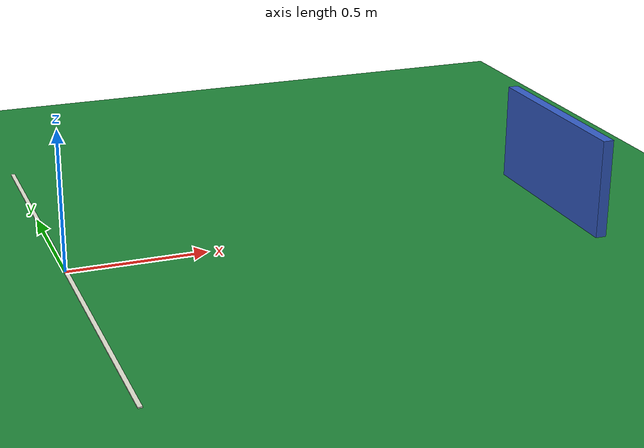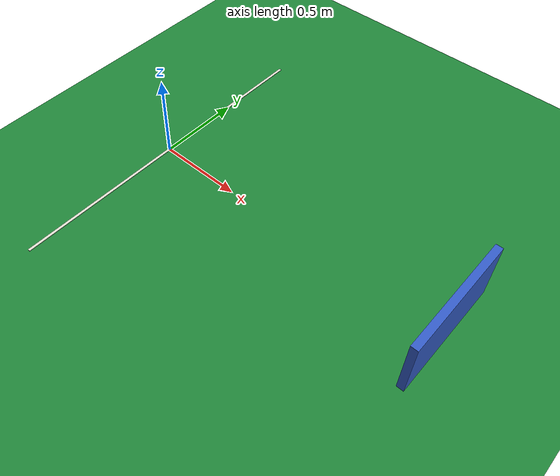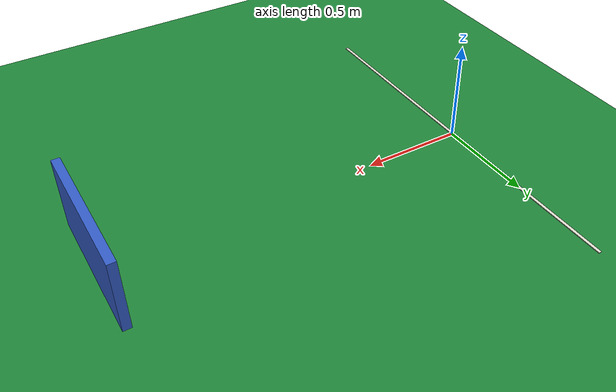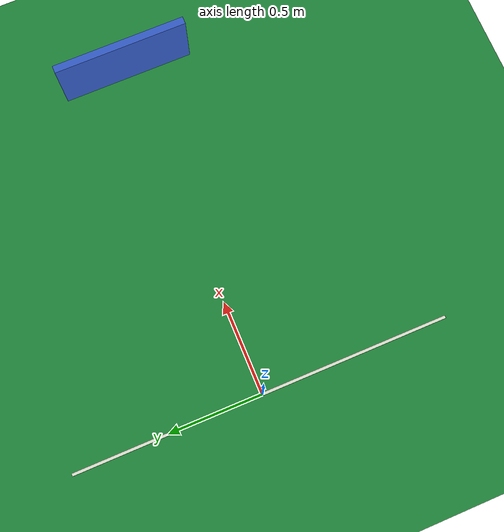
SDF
<?xml version="1.0"?>
<sdf version="1.8">
  <world name="footbot_stage2">
    <gravity>0 0 -9.81</gravity>
    <magnetic_field>0 0 0</magnetic_field>
    <atmosphere type="adiabatic"/>

    <plugin filename="ignition-gazebo-physics-system" name="ignition::gazebo::systems::Physics"/>
    <plugin filename="libfootbot_ball_drag_system.so" name="footbot_gazebo::BallDragSystem">
      <link_name>ball_link</link_name>
      <linear_damping>0.18</linear_damping>
      <angular_damping>0.0012</angular_damping>
      <max_force>0.30</max_force>
      <max_torque>0.015</max_torque>
      <stop_linear_speed>0.02</stop_linear_speed>
      <stop_angular_speed>0.35</stop_angular_speed>
    </plugin>
    <plugin filename="ignition-gazebo-user-commands-system" name="ignition::gazebo::systems::UserCommands"/>
    <plugin filename="ignition-gazebo-scene-broadcaster-system" name="ignition::gazebo::systems::SceneBroadcaster"/>
    <plugin filename="ignition-gazebo-sensors-system" name="ignition::gazebo::systems::Sensors">
      <render_engine>ogre2</render_engine>
    </plugin>

    <physics name="default_physics" type="ignored">
      <max_step_size>0.001</max_step_size>
      <real_time_factor>1.0</real_time_factor>
    </physics>

    <scene>
      <ambient>0.60 0.60 0.60 1.0</ambient>
      <background>0.76 0.80 0.84 1.0</background>
      <shadows>true</shadows>
    </scene>

    <light name="sun" type="directional">
      <cast_shadows>true</cast_shadows>
      <pose>0 0 5 0 0 0</pose>
      <diffuse>0.90 0.90 0.90 1</diffuse>
      <specular>0.20 0.20 0.20 1</specular>
      <attenuation>
        <range>1000</range>
        <constant>0.9</constant>
        <linear>0.01</linear>
        <quadratic>0.001</quadratic>
      </attenuation>
      <direction>-0.45 0.15 -0.9</direction>
    </light>

    <model name="control_field">
      <static>true</static>
      <link name="field_link">
        <collision name="field_collision">
          <geometry>
            <plane>
              <normal>0 0 1</normal>
              <size>5 4</size>
            </plane>
          </geometry>
        </collision>
        <visual name="field_visual">
          <geometry>
            <plane>
              <normal>0 0 1</normal>
              <size>5 4</size>
            </plane>
          </geometry>
          <material>
            <ambient>0.12 0.42 0.18 1</ambient>
            <diffuse>0.12 0.52 0.22 1</diffuse>
            <specular>0.05 0.05 0.05 1</specular>
          </material>
        </visual>
        <visual name="center_reference_line">
          <pose>0 0 0.004 0 0 0</pose>
          <geometry>
            <box>
              <size>0.015 2.0 0.004</size>
            </box>
          </geometry>
          <material>
            <ambient>0.88 0.88 0.82 1</ambient>
            <diffuse>0.88 0.88 0.82 1</diffuse>
          </material>
        </visual>
      </link>
    </model>

    <model name="goal_marker">
      <static>true</static>
      <pose>1.85 0 0.18 0 0 0</pose>
      <link name="goal_marker_link">
        <collision name="collision">
          <geometry>
            <box>
              <size>0.04 0.70 0.36</size>
            </box>
          </geometry>
        </collision>
        <visual name="visual">
          <geometry>
            <box>
              <size>0.04 0.70 0.36</size>
            </box>
          </geometry>
          <material>
            <ambient>0.20 0.36 0.78 1</ambient>
            <diffuse>0.20 0.36 0.78 1</diffuse>
          </material>
        </visual>
      </link>
    </model>
  </world>
</sdf>
